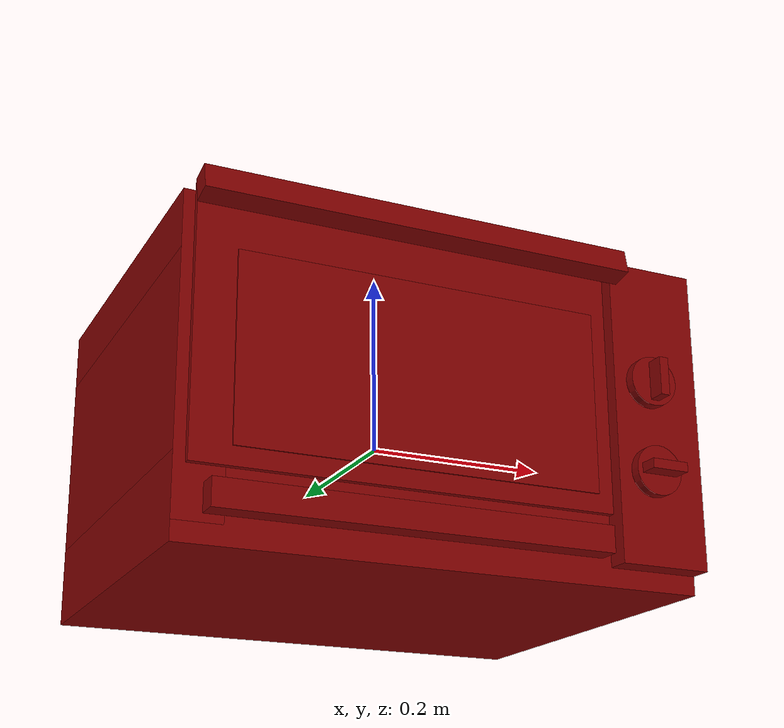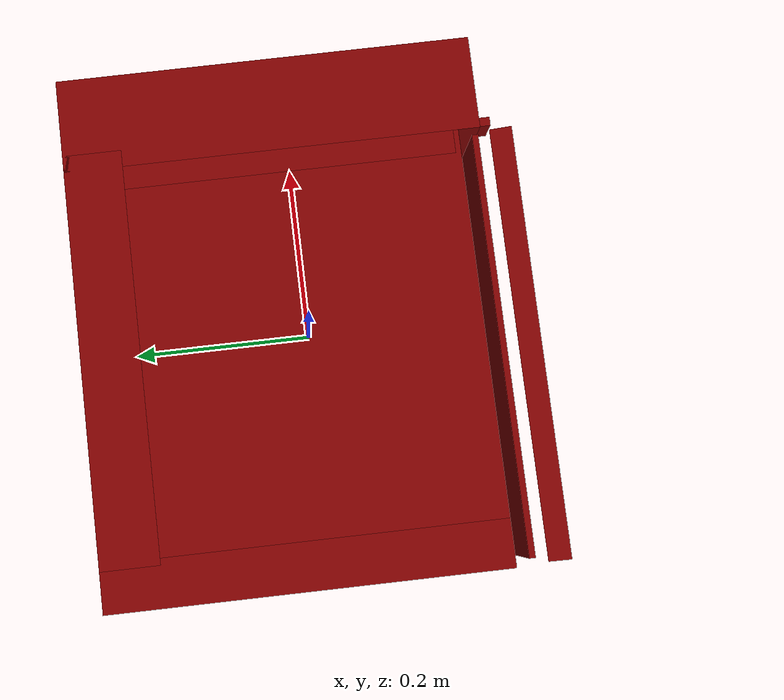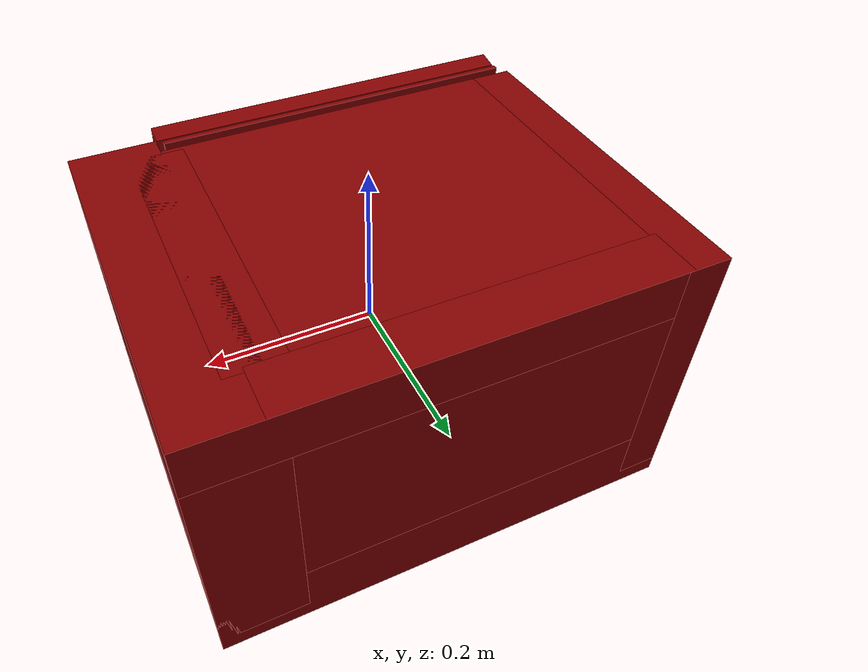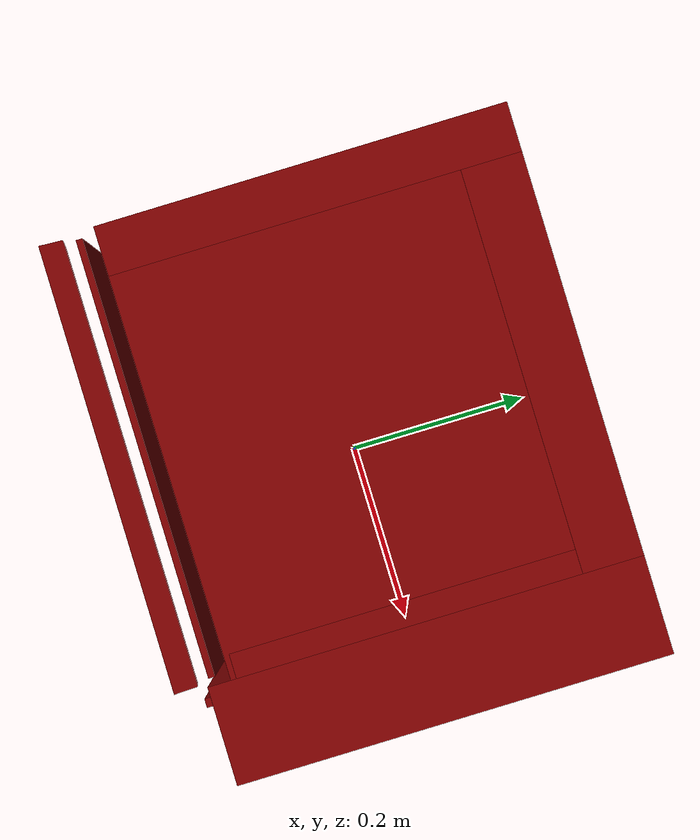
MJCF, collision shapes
<?xml version='1.0' encoding='UTF-8'?>
<mujoco model="model">
  <option timestep="0.002" gravity="0.0 0.0 -9.81"/>
  <compiler angle="radian"/>
  <asset>
    <mesh file="visuals/Body001.obj" name="Body001_vis"/>
    <mesh file="visuals/Door001.obj" name="Door001_vis"/>
    <mesh file="visuals/Door001_Clear.obj" name="Door001_Clear_vis"/>
    <mesh file="visuals/Knob001.obj" name="Knob001_vis"/>
    <mesh file="visuals/Knob002.obj" name="Knob002_vis"/>
    <mesh file="visuals/Shelf001.obj" name="Shelf001_vis"/>
    <texture file="visuals/T_BC001.png" name="Body001_material" type="2d"/>
    <material name="Body001_material" rgba="1 1 1 1.0" texture="Body001_material" shininess="0.1" specular="4"/>
    <texture file="visuals/T_BC001.png" name="Door001_material" type="2d"/>
    <material name="Door001_material" rgba="1 1 1 1.0" texture="Door001_material" shininess="0.1" specular="4"/>
    <texture file="visuals/T_BC001.png" name="Door001_Clear_material" type="2d"/>
    <material name="Door001_Clear_material" rgba="1 1 1 0.860534131526947" texture="Door001_Clear_material" shininess="0.5" specular="0.3103448502657381"/>
    <texture file="visuals/T_BC001.png" name="Knob001_material" type="2d"/>
    <material name="Knob001_material" rgba="1 1 1 1.0" texture="Knob001_material" shininess="0.5" specular="0.3103448502657381"/>
    <texture file="visuals/T_BC001.png" name="Shelf001_material" type="2d"/>
    <material name="Shelf001_material" rgba="1 1 1 1.0" texture="Shelf001_material" shininess="0.1" specular="4"/>
    <texture file="visuals/T_BC001.png" name="Knob002_material" type="2d"/>
    <material name="Knob002_material" rgba="1 1 1 1.0" texture="Knob002_material" shininess="0.5" specular="0.3103448502657381"/>
  </asset>
  <default>
    <default class="visual">
      <geom conaffinity="0" contype="0" group="1" type="mesh"/>
    </default>
    <default class="collision">
      <geom group="0" rgba="0.5 0 0 0.5"/>
    </default>
    <default class="spawn">
      <geom group="0" rgba="1 1 1 0.5" contype="0" conaffinity="0"/>
      <site group="0" rgba="1 1 1 0.5"/>
    </default>
    <default class="region">
      <geom group="1" conaffinity="0" contype="0" rgba="0 1 0 0"/>
    </default>
  </default>
  <worldbody>
    <body>
      <body name="object">
        <geom mesh="Body001_vis" type="mesh" solimp="0.998 0.998 0.001" solref="0.001 1" friction="0.95 0.3 0.1" class="visual" material="Body001_material"/>
        <geom class="collision" type="box" pos="0.000000 0.029402 0.141102" size="0.2772040069103241 0.2074829488992691 0.030018068850040436" quat="1.0 0.0 0.0 0.0" density="1000.0"/>
        <geom class="collision" type="box" pos="0.000000 0.029402 -0.128827" size="0.2772040069103241 0.20748287439346313 0.04229314252734184" quat="1.0 0.0 0.0 0.0" density="1000.0"/>
        <geom class="collision" type="box" pos="0.227698 0.017759 0.010064" size="0.049505919218063354 0.219125896692276 0.16105617582798004" quat="1.0 0.0 0.0 0.0" density="1000.0"/>
        <geom class="collision" type="box" pos="-0.252238 0.029395 0.010064" size="0.024965299293398857 0.20749036967754364 0.16105616092681885" quat="1.0 0.0 0.0 0.0" density="1000.0"/>
        <geom class="collision" type="box" pos="-0.019350 0.206079 0.010064" size="0.21508970856666565 0.030805738642811775 0.16105619072914124" quat="1.0 0.0 0.0 0.0" density="1000.0"/>
        <geom class="collision" type="box" pos="-0.039668 -0.170448 -0.128357" size="0.20798663794994354 0.03132147341966629 0.01409910712391138" quat="1.0 0.0 0.0 0.0" density="1000.0"/>
        <geom class="collision" type="box" pos="0.184721 0.004628 0.010064" size="0.031199544668197632 0.17710693180561066 0.16105616092681885" quat="1.0 0.0 0.0 0.0" density="1000.0"/>
        <body name="Door001">
          <joint axis="1.0 0.0 0.0" pos="-0.050802 -0.201197 -0.106915" limited="true" name="Door001_joint" range="0.0 1.5707963267948966" type="hinge" damping="1" frictionloss="1" armature=".01" stiffness="0.05"/>
          <geom mesh="Door001_vis" type="mesh" solimp="0.998 0.998 0.001" solref="0.001 1" friction="0.95 0.3 0.1" class="visual" material="Door001_material"/>
          <geom class="collision" type="box" pos="-0.049492 -0.194869 0.034573" size="0.21992427110671997 0.0032664891332387924 0.13654744625091553" quat="1.0 0.0 0.0 0.0" density="1000.0"/>
          <geom class="collision" type="box" pos="-0.049492 -0.225489 0.154528" size="0.2255878895521164 0.011734182946383953 0.012705291621387005" quat="0.9953007102012634 -0.09683232009410858 2.150109425927051e-17 8.2856648339132e-24" density="1000.0"/>
          <body name="Door001_Clear">
            <geom mesh="Door001_Clear_vis" type="mesh" solimp="0.998 0.998 0.001" solref="0.001 1" friction="0.95 0.3 0.1" class="visual" material="Door001_Clear_material"/>
            <geom class="collision" type="box" pos="-0.037358 -0.197391 0.012630" size="0.1911514401435852 0.0027261930517852306 0.09558159112930298" quat="1.0 0.0 0.0 0.0" density="1000.0"/>
          </body>
        </body>
        <body name="Knob001">
          <joint axis="0.0 1.0 0.0" pos="0.217115 -0.207937 0.040436" limited="true" name="Knob001_joint" range="0.0 4.625122517784973" type="hinge" damping="0.05" armature="0.001"/>
          <geom mesh="Knob001_vis" type="mesh" solimp="0.998 0.998 0.001" solref="0.001 1" friction="0.95 0.3 0.1" class="visual" material="Knob001_material"/>
          <geom class="collision" type="cylinder" pos="0.216800 -0.209298 0.040376" size="0.026287123560905457 0.005400040186941624" quat="0.7071067094802856 0.7071068286895752 0.0 0.0" density="1000.0"/>
          <geom class="collision" type="box" pos="0.217024 -0.223396 0.039989" size="0.00500000175088644 0.00982767716050148 0.020134959369897842" quat="1.0 0.0 0.0 0.0" density="1000.0"/>
        </body>
        <body name="Shelf001">
          <joint axis="0.0 -1.0 0.0" pos="-0.038804 -0.008793 0.018943" limited="true" name="Shelf001_joint" range="0.0 0.15" type="slide" damping="1" frictionloss="1" armature=".01" stiffness="0.05"/>
          <geom mesh="Shelf001_vis" type="mesh" solimp="0.998 0.998 0.001" solref="0.001 1" friction="0.95 0.3 0.1" class="visual" material="Shelf001_material"/>
          <geom class="collision" type="box" pos="-0.038626 -0.008766 0.018820" size="0.16946569085121155 0.13897036015987396 0.004970031790435314" quat="1.0 0.0 0.0 0.0" density="1000.0"/>
        </body>
        <body name="Knob002">
          <joint axis="0.0 1.0 0.0" pos="0.217115 -0.207364 -0.054692" limited="true" name="Knob002_joint" range="0.0 5.270894341022875" type="hinge" damping="0.05" armature="0.001" springref="-0.1"/>
          <geom mesh="Knob002_vis" type="mesh" solimp="0.998 0.998 0.001" solref="0.001 1" friction="0.95 0.3 0.1" class="visual" material="Knob002_material"/>
          <geom class="collision" type="cylinder" pos="0.217428 -0.208794 -0.054696" size="0.026215171441435814 0.005385259166359901" quat="0.7071067094802856 0.7071068286895752 0.0 0.0" density="1000.0"/>
          <geom class="collision" type="box" pos="0.217347 -0.223396 -0.054513" size="0.020134959369897842 0.00982767716050148 0.004999999888241291" quat="1.0 0.0 0.0 0.0" density="1000.0"/>
        </body>
        <geom class="region" name="reg_int" type="box" pos="-0.037285 -0.0006489999999999968 0.013745" size="0.191716 0.177027 0.10065099999999999"/>
        <geom class="region" name="reg_main" type="box" pos="0.0 0.017557500000000004 0.0" size="0.277204 0.2193275 0.17112"/>
      </body>
    </body>
  </worldbody>
  <actuator>
    <motor name="Door001_joint_actuator" joint="Door001_joint" gear="50"/>
    <motor name="Knob001_joint_actuator" joint="Knob001_joint" gear="50"/>
    <motor name="Shelf001_joint_actuator" joint="Shelf001_joint" gear="50"/>
    <motor name="Knob002_joint_actuator" joint="Knob002_joint" gear="50"/>
  </actuator>
</mujoco>
